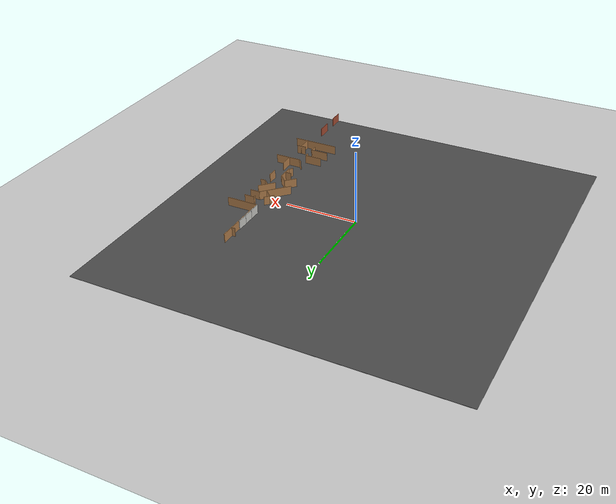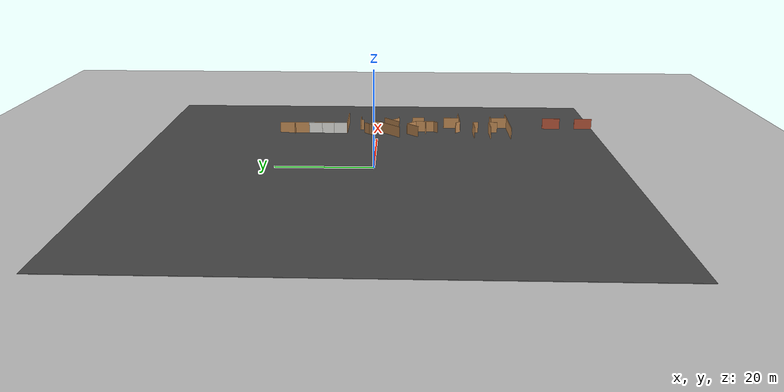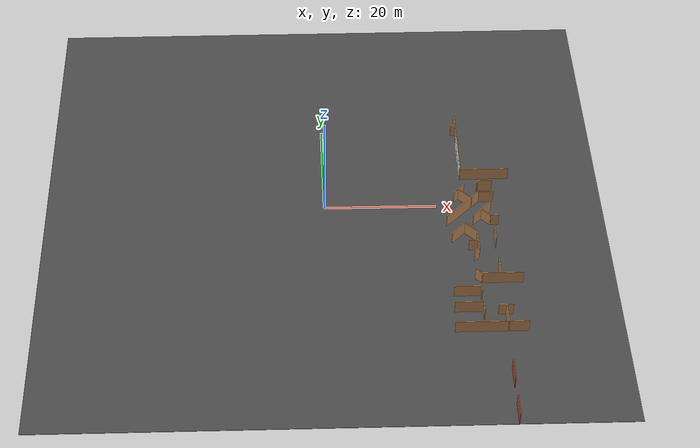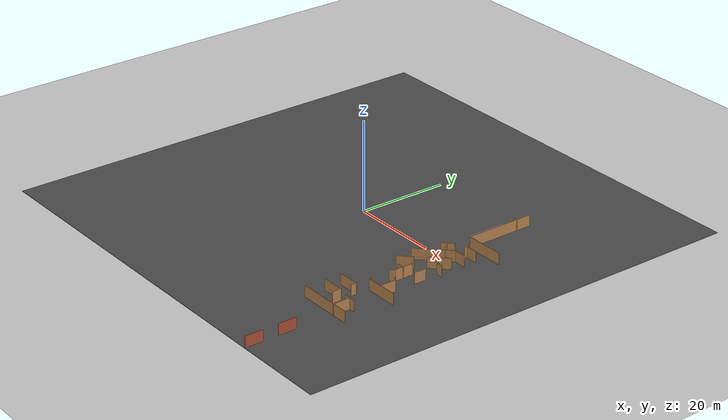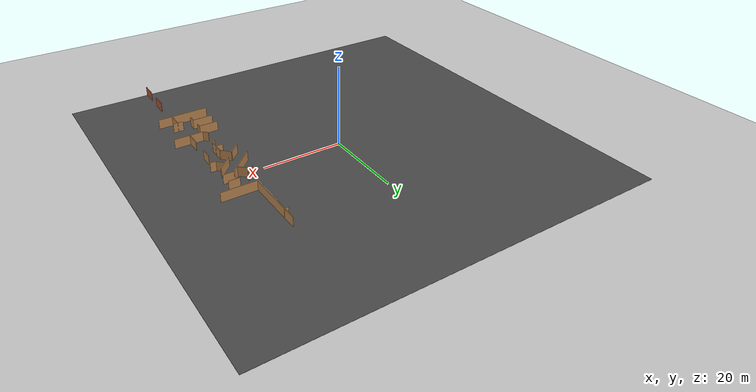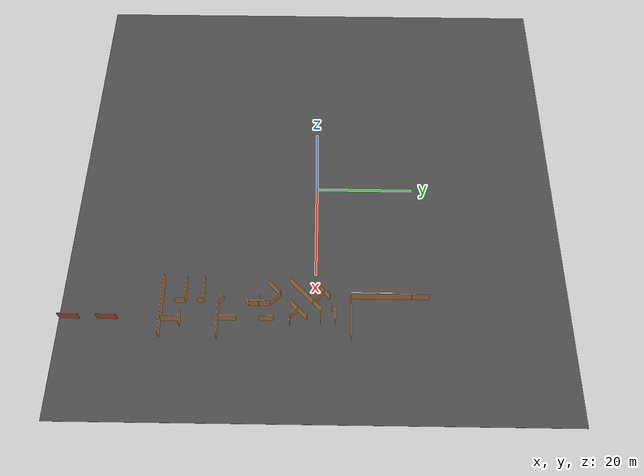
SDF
<sdf version="1.6">
 <world name="default">
  <model name="ground_plane">
   <static>1</static>
   <link name="link">
    <collision name="collision">
     <geometry><plane><normal>0 0 1</normal><size>100 100</size></plane></geometry>
     <surface><friction><ode><mu>100</mu><mu2>50</mu2></ode></friction></surface>
    </collision>
    <visual name="visual">
     <cast_shadows>0</cast_shadows>
     <geometry><plane><normal>0 0 1</normal><size>100 100</size></plane></geometry>
     <material>
      <script><uri>file://media/materials/scripts/gazebo.material</uri><name>Gazebo/Grey</name></script>
     </material>
    </visual>
   </link>
  </model>
  <model name="asphalt_plane">
   <static>1</static>
   <link name="link">
    <collision name="collision"><geometry><box><size>100 100 0.1</size></box></geometry></collision>
    <visual name="visual">
     <cast_shadows>0</cast_shadows>
     <geometry><box><size>100 100 0.1</size></box></geometry>
     <material>
      <script>
       <uri>model://asphalt_plane/materials/scripts</uri>
       <uri>model://asphalt_plane/materials/textures</uri>
       <name>vrc/asphalt</name>
      </script>
     </material>
    </visual>
   </link>
  </model>
  <model name="concrete_wall_15">
   <pose>24.8729 8.48253 0 0 -0 0</pose>
   <link name="Wall_0">
    <collision name="Wall_0_Collision">
     <geometry><box><size>3 0.15 2.5</size></box></geometry>
     <pose>0 0 1.25 0 -0 0</pose>
    </collision>
    <visual name="Wall_0_Visual">
     <pose>0 0 1.25 0 -0 0</pose>
     <geometry><box><size>3 0.15 2.5</size></box></geometry>
     <material>
      <script><uri>file://media/materials/scripts/gazebo.material</uri><name>Gazebo/CeilingTiled</name></script>
      <ambient>1 1 1 1</ambient>
     </material>
     <meta><layer>0</layer></meta>
    </visual>
    <pose>0 0 0 0 -0 1.5708</pose>
   </link>
   <static>1</static>
  </model>
  <model name="concrete_wall_19">
   <pose>24.8866 11.194 0 0 -0 0</pose>
   <link name="Wall_0">
    <collision name="Wall_0_Collision">
     <geometry><box><size>3 0.15 2.5</size></box></geometry>
     <pose>0 0 1.25 0 -0 0</pose>
    </collision>
    <visual name="Wall_0_Visual">
     <pose>0 0 1.25 0 -0 0</pose>
     <geometry><box><size>3 0.15 2.5</size></box></geometry>
     <material>
      <script><uri>file://media/materials/scripts/gazebo.material</uri><name>Gazebo/CeilingTiled</name></script>
      <ambient>1 1 1 1</ambient>
     </material>
     <meta><layer>0</layer></meta>
    </visual>
    <pose>0 0 0 0 -0 1.5708</pose>
   </link>
   <static>1</static>
  </model>
  <model name="concrete_wall_20">
   <pose>24.896 14.1844 0 0 -0 0</pose>
   <link name="Wall_0">
    <collision name="Wall_0_Collision">
     <geometry><box><size>3 0.15 2.5</size></box></geometry>
     <pose>0 0 1.25 0 -0 0</pose>
    </collision>
    <visual name="Wall_0_Visual">
     <pose>0 0 1.25 0 -0 0</pose>
     <geometry><box><size>3 0.15 2.5</size></box></geometry>
     <material>
      <script><uri>file://media/materials/scripts/gazebo.material</uri><name>Gazebo/CeilingTiled</name></script>
      <ambient>1 1 1 1</ambient>
     </material>
     <meta><layer>0</layer></meta>
    </visual>
    <pose>0 0 0 0 -0 1.5708</pose>
   </link>
   <static>1</static>
  </model>
  <model name="brick_wall_1">
   <pose>29.9233 -40.4954 0 0 -0 1.57079</pose>
   <link name="Wall_0">
    <collision name="Wall_0_Collision">
     <geometry><box><size>4 0.15 2.5</size></box></geometry>
     <pose>0 0 1.25 0 -0 0</pose>
    </collision>
    <visual name="Wall_0_Visual">
     <pose>0 0 1.25 0 -0 0</pose>
     <geometry><box><size>4 0.15 2.5</size></box></geometry>
     <material>
      <script><uri>file://media/materials/scripts/gazebo.material</uri><name>Gazebo/Bricks</name></script>
      <ambient>1 1 1 1</ambient>
     </material>
     <meta><layer>0</layer></meta>
    </visual>
   </link>
   <static>1</static>
  </model>
  <model name="brick_wall_1_clone">
   <pose>29.9233 -47.9139 0 0 -0 1.57079</pose>
   <link name="Wall_0">
    <collision name="Wall_0_Collision">
     <geometry><box><size>4 0.15 2.5</size></box></geometry>
     <pose>0 0 1.25 0 -0 0</pose>
    </collision>
    <visual name="Wall_0_Visual">
     <pose>0 0 1.25 0 -0 0</pose>
     <geometry><box><size>4 0.15 2.5</size></box></geometry>
     <material>
      <script><uri>file://media/materials/scripts/gazebo.material</uri><name>Gazebo/Bricks</name></script>
      <ambient>1 1 1 1</ambient>
     </material>
     <meta><layer>0</layer></meta>
    </visual>
   </link>
   <static>1</static>
  </model>
  <model name="willowgarage_v1_1">
   <pose>-14.3408 -3.86286 0 0 -0 0</pose>
   <link name="Wall_18">
    <collision name="Wall_18_Collision">
     <geometry><box><size>15.5 0.15 2.5</size></box></geometry>
     <pose>0 0 1.25 0 -0 0</pose>
    </collision>
    <visual name="Wall_18_Visual">
     <pose>0 0 1.25 0 -0 0</pose>
     <geometry><box><size>15.5 0.15 2.5</size></box></geometry>
     <material>
      <script><uri>file://media/materials/scripts/gazebo.material</uri><name>Gazebo/Wood</name></script>
      <ambient>1 1 1 1</ambient>
     </material>
     <meta><layer>0</layer></meta>
    </visual>
    <pose>39.3855 18.4709 0 0 0 -1.5708</pose>
   </link>
   <link name="Wall_338">
    <collision name="Wall_338_Collision">
     <geometry><box><size>8.75 0.15 2.5</size></box></geometry>
     <pose>0 0 1.25 0 -0 0</pose>
    </collision>
    <visual name="Wall_338_Visual">
     <pose>0 0 1.25 0 -0 0</pose>
     <geometry><box><size>8.75 0.15 2.5</size></box></geometry>
     <material>
      <script><uri>file://media/materials/scripts/gazebo.material</uri><name>Gazebo/Wood</name></script>
      <ambient>1 1 1 1</ambient>
     </material>
     <meta><layer>0</layer></meta>
    </visual>
    <pose>43.6855 10.7959 0 0 -0 0</pose>
   </link>
   <link name="Wall_347">
    <collision name="Wall_347_Collision">
     <geometry><box><size>12.5 0.15 2.5</size></box></geometry>
     <pose>0 0 1.25 0 -0 0</pose>
    </collision>
    <visual name="Wall_347_Visual">
     <pose>0 0 1.25 0 -0 0</pose>
     <geometry><box><size>12.5 0.15 2.5</size></box></geometry>
     <material>
      <script><uri>file://media/materials/scripts/gazebo.material</uri><name>Gazebo/Wood</name></script>
      <ambient>1 1 1 1</ambient>
     </material>
     <meta><layer>0</layer></meta>
    </visual>
    <pose>41.7212 -26.2805 0 0 -0 0</pose>
   </link>
   <link name="Wall_351">
    <collision name="Wall_351_Collision">
     <geometry><box><size>4.75 0.15 2.5</size></box></geometry>
     <pose>0 0 1.25 0 -0 0</pose>
    </collision>
    <visual name="Wall_351_Visual">
     <pose>0 0 1.25 0 -0 0</pose>
     <geometry><box><size>4.75 0.15 2.5</size></box></geometry>
     <material>
      <script><uri>file://media/materials/scripts/gazebo.material</uri><name>Gazebo/Wood</name></script>
      <ambient>1 1 1 1</ambient>
     </material>
     <meta><layer>0</layer></meta>
    </visual>
    <pose>42.3838 0.591594 0 0 0 -2.35619</pose>
   </link>
   <link name="Wall_354">
    <collision name="Wall_354_Collision">
     <geometry><box><size>3.5 0.15 2.5</size></box></geometry>
     <pose>0 0 1.25 0 -0 0</pose>
    </collision>
    <visual name="Wall_354_Visual">
     <pose>0 0 1.25 0 -0 0</pose>
     <geometry><box><size>3.5 0.15 2.5</size></box></geometry>
     <material>
      <script><uri>file://media/materials/scripts/gazebo.material</uri><name>Gazebo/Wood</name></script>
      <ambient>1 1 1 1</ambient>
     </material>
     <meta><layer>0</layer></meta>
    </visual>
    <pose>37.8607 -4.19295 0 0 0 -2.35619</pose>
   </link>
   <link name="Wall_358">
    <collision name="Wall_358_Collision">
     <geometry><box><size>7.25 0.15 2.5</size></box></geometry>
     <pose>0 0 1.25 0 -0 0</pose>
    </collision>
    <visual name="Wall_358_Visual">
     <pose>0 0 1.25 0 -0 0</pose>
     <geometry><box><size>7.25 0.15 2.5</size></box></geometry>
     <material>
      <script><uri>file://media/materials/scripts/gazebo.material</uri><name>Gazebo/Wood</name></script>
      <ambient>1 1 1 1</ambient>
     </material>
     <meta><layer>0</layer></meta>
    </visual>
    <pose>44.5601 -15.1321 0 0 -0 3.14159</pose>
   </link>
   <link name="Wall_359">
    <collision name="Wall_359_Collision">
     <geometry><box><size>1.5 0.15 2.5</size></box></geometry>
     <pose>0 0 1.25 0 -0 0</pose>
    </collision>
    <visual name="Wall_359_Visual">
     <pose>0 0 1.25 0 -0 0</pose>
     <geometry><box><size>1.5 0.15 2.5</size></box></geometry>
     <material>
      <script><uri>file://media/materials/scripts/gazebo.material</uri><name>Gazebo/Wood</name></script>
      <ambient>1 1 1 1</ambient>
     </material>
     <meta><layer>0</layer></meta>
    </visual>
    <pose>40.5328 -14.6548 0 0 -0 2.35619</pose>
   </link>
   <link name="Wall_361">
    <collision name="Wall_361_Collision">
     <geometry><box><size>2.25 0.15 2.5</size></box></geometry>
     <pose>0 0 1.25 0 -0 0</pose>
    </collision>
    <visual name="Wall_361_Visual">
     <pose>0 0 1.25 0 -0 0</pose>
     <geometry><box><size>2.25 0.15 2.5</size></box></geometry>
     <material>
      <script><uri>file://media/materials/scripts/gazebo.material</uri><name>Gazebo/Wood</name></script>
      <ambient>1 1 1 1</ambient>
     </material>
     <meta><layer>0</layer></meta>
    </visual>
    <pose>43.0424 -0.333442 0 0 0 -0.785398</pose>
   </link>
   <link name="Wall_362">
    <collision name="Wall_362_Collision">
     <geometry><box><size>1.5 0.15 2.5</size></box></geometry>
     <pose>0 0 1.25 0 -0 0</pose>
    </collision>
    <visual name="Wall_362_Visual">
     <pose>0 0 1.25 0 -0 0</pose>
     <geometry><box><size>1.5 0.15 2.5</size></box></geometry>
     <material>
      <script><uri>file://media/materials/scripts/gazebo.material</uri><name>Gazebo/Wood</name></script>
      <ambient>1 1 1 1</ambient>
     </material>
     <meta><layer>0</layer></meta>
    </visual>
    <pose>44.4599 -1.0759 0 0 -0 0</pose>
   </link>
   <link name="Wall_365">
    <collision name="Wall_365_Collision">
     <geometry><box><size>2.75 0.15 2.5</size></box></geometry>
     <pose>0 0 1.25 0 -0 0</pose>
    </collision>
    <visual name="Wall_365_Visual">
     <pose>0 0 1.25 0 -0 0</pose>
     <geometry><box><size>2.75 0.15 2.5</size></box></geometry>
     <material>
      <script><uri>file://media/materials/scripts/gazebo.material</uri><name>Gazebo/Wood</name></script>
      <ambient>1 1 1 1</ambient>
     </material>
     <meta><layer>0</layer></meta>
    </visual>
    <pose>44.2273 -5.61048 0 0 0 -1.5708</pose>
   </link>
   <link name="Wall_371">
    <collision name="Wall_371_Collision">
     <geometry><box><size>3.5 0.15 2.5</size></box></geometry>
     <pose>0 0 1.25 0 -0 0</pose>
    </collision>
    <visual name="Wall_371_Visual">
     <pose>0 0 1.25 0 -0 0</pose>
     <geometry><box><size>3.5 0.15 2.5</size></box></geometry>
     <material>
      <script><uri>file://media/materials/scripts/gazebo.material</uri><name>Gazebo/Wood</name></script>
      <ambient>1 1 1 1</ambient>
     </material>
     <meta><layer>0</layer></meta>
    </visual>
    <pose>44.2528 -13.3088 0 0 0 -1.5708</pose>
   </link>
   <link name="Wall_373">
    <collision name="Wall_373_Collision">
     <geometry><box><size>3 0.15 2.5</size></box></geometry>
     <pose>0 0 1.25 0 -0 0</pose>
    </collision>
    <visual name="Wall_373_Visual">
     <pose>0 0 1.25 0 -0 0</pose>
     <geometry><box><size>3 0.15 2.5</size></box></geometry>
     <material>
      <script><uri>file://media/materials/scripts/gazebo.material</uri><name>Gazebo/Wood</name></script>
      <ambient>1 1 1 1</ambient>
     </material>
     <meta><layer>0</layer></meta>
    </visual>
    <pose>40.0527 -4.01617 0 0 0 -0.785398</pose>
   </link>
   <link name="Wall_374">
    <collision name="Wall_374_Collision">
     <geometry><box><size>4.25 0.15 2.5</size></box></geometry>
     <pose>0 0 1.25 0 -0 0</pose>
    </collision>
    <visual name="Wall_374_Visual">
     <pose>0 0 1.25 0 -0 0</pose>
     <geometry><box><size>4.25 0.15 2.5</size></box></geometry>
     <material>
      <script><uri>file://media/materials/scripts/gazebo.material</uri><name>Gazebo/Wood</name></script>
      <ambient>1 1 1 1</ambient>
     </material>
     <meta><layer>0</layer></meta>
    </visual>
    <pose>41.0604 -7.0738 0 0 0 -1.5708</pose>
   </link>
   <link name="Wall_375">
    <collision name="Wall_375_Collision">
     <geometry><box><size>1.25 0.15 2.5</size></box></geometry>
     <pose>0 0 1.25 0 -0 0</pose>
    </collision>
    <visual name="Wall_375_Visual">
     <pose>0 0 1.25 0 -0 0</pose>
     <geometry><box><size>1.25 0.15 2.5</size></box></geometry>
     <material>
      <script><uri>file://media/materials/scripts/gazebo.material</uri><name>Gazebo/Wood</name></script>
      <ambient>1 1 1 1</ambient>
     </material>
     <meta><layer>0</layer></meta>
    </visual>
    <pose>40.6715 -9.51271 0 0 0 -2.35619</pose>
   </link>
   <link name="Wall_377">
    <collision name="Wall_377_Collision">
     <geometry><box><size>1.75 0.15 2.5</size></box></geometry>
     <pose>0 0 1.25 0 -0 0</pose>
    </collision>
    <visual name="Wall_377_Visual">
     <pose>0 0 1.25 0 -0 0</pose>
     <geometry><box><size>1.75 0.15 2.5</size></box></geometry>
     <material>
      <script><uri>file://media/materials/scripts/gazebo.material</uri><name>Gazebo/Wood</name></script>
      <ambient>1 1 1 1</ambient>
     </material>
     <meta><layer>0</layer></meta>
    </visual>
    <pose>40.2794 -7.23982 0 0 -0 3.14159</pose>
   </link>
   <link name="Wall_382">
    <collision name="Wall_382_Collision">
     <geometry><box><size>8.75 0.15 2.5</size></box></geometry>
     <pose>0 0 1.25 0 -0 0</pose>
    </collision>
    <visual name="Wall_382_Visual">
     <pose>0 0 1.25 0 -0 0</pose>
     <geometry><box><size>8.75 0.15 2.5</size></box></geometry>
     <material>
      <script><uri>file://media/materials/scripts/gazebo.material</uri><name>Gazebo/Wood</name></script>
      <ambient>1 1 1 1</ambient>
     </material>
     <meta><layer>0</layer></meta>
    </visual>
    <pose>39.1018 1.85636 0 0 -0 0.785398</pose>
   </link>
   <link name="Wall_383">
    <collision name="Wall_383_Collision">
     <geometry><box><size>2.75 0.15 2.5</size></box></geometry>
     <pose>0 0 1.25 0 -0 0</pose>
    </collision>
    <visual name="Wall_383_Visual">
     <pose>0 0 1.25 0 -0 0</pose>
     <geometry><box><size>2.75 0.15 2.5</size></box></geometry>
     <material>
      <script><uri>file://media/materials/scripts/gazebo.material</uri><name>Gazebo/Wood</name></script>
      <ambient>1 1 1 1</ambient>
     </material>
     <meta><layer>0</layer></meta>
    </visual>
    <pose>43.4424 4.89692 0 0 -0 0</pose>
   </link>
   <link name="Wall_385">
    <collision name="Wall_385_Collision">
     <geometry><box><size>2.75 0.15 2.5</size></box></geometry>
     <pose>0 0 1.25 0 -0 0</pose>
    </collision>
    <visual name="Wall_385_Visual">
     <pose>0 0 1.25 0 -0 0</pose>
     <geometry><box><size>2.75 0.15 2.5</size></box></geometry>
     <material>
      <script><uri>file://media/materials/scripts/gazebo.material</uri><name>Gazebo/Wood</name></script>
      <ambient>1 1 1 1</ambient>
     </material>
     <meta><layer>0</layer></meta>
    </visual>
    <pose>43.4424 7.74692 0 0 -0 3.14159</pose>
   </link>
   <link name="Wall_386">
    <collision name="Wall_386_Collision">
     <geometry><box><size>0.75 0.15 2.5</size></box></geometry>
     <pose>0 0 1.25 0 -0 0</pose>
    </collision>
    <visual name="Wall_386_Visual">
     <pose>0 0 1.25 0 -0 0</pose>
     <geometry><box><size>0.75 0.15 2.5</size></box></geometry>
     <material>
      <script><uri>file://media/materials/scripts/gazebo.material</uri><name>Gazebo/Wood</name></script>
      <ambient>1 1 1 1</ambient>
     </material>
     <meta><layer>0</layer></meta>
    </visual>
    <pose>42.1424 7.44692 0 0 0 -1.5708</pose>
   </link>
   <link name="Wall_407">
    <collision name="Wall_407_Collision">
     <geometry><box><size>5 0.15 2.5</size></box></geometry>
     <pose>0 0 1.25 0 -0 0</pose>
    </collision>
    <visual name="Wall_407_Visual">
     <pose>0 0 1.25 0 -0 0</pose>
     <geometry><box><size>5 0.15 2.5</size></box></geometry>
     <material>
      <script><uri>file://media/materials/scripts/gazebo.material</uri><name>Gazebo/Wood</name></script>
      <ambient>1 1 1 1</ambient>
     </material>
     <meta><layer>0</layer></meta>
    </visual>
    <pose>38.2728 -21.7671 0 0 -0 0</pose>
   </link>
   <link name="Wall_408">
    <collision name="Wall_408_Collision">
     <geometry><box><size>2 0.15 2.5</size></box></geometry>
     <pose>0 0 1.25 0 -0 0</pose>
    </collision>
    <visual name="Wall_408_Visual">
     <pose>0 0 1.25 0 -0 0</pose>
     <geometry><box><size>2 0.15 2.5</size></box></geometry>
     <material>
      <script><uri>file://media/materials/scripts/gazebo.material</uri><name>Gazebo/Wood</name></script>
      <ambient>1 1 1 1</ambient>
     </material>
     <meta><layer>0</layer></meta>
    </visual>
    <pose>40.6978 -22.6921 0 0 0 -1.5708</pose>
   </link>
   <link name="Wall_414">
    <collision name="Wall_414_Collision">
     <geometry><box><size>4 0.15 2.5</size></box></geometry>
     <pose>0 0 1.25 0 -0 0</pose>
    </collision>
    <visual name="Wall_414_Visual">
     <pose>0 0 1.25 0 -0 0</pose>
     <geometry><box><size>4 0.15 2.5</size></box></geometry>
     <material>
      <script><uri>file://media/materials/scripts/gazebo.material</uri><name>Gazebo/Wood</name></script>
      <ambient>1 1 1 1</ambient>
     </material>
     <meta><layer>0</layer></meta>
    </visual>
    <pose>44.4731 -24.4235 0 0 -0 1.5708</pose>
   </link>
   <link name="Wall_416">
    <collision name="Wall_416_Collision">
     <geometry><box><size>2.5 0.15 2.5</size></box></geometry>
     <pose>0 0 1.25 0 -0 0</pose>
    </collision>
    <visual name="Wall_416_Visual">
     <pose>0 0 1.25 0 -0 0</pose>
     <geometry><box><size>2.5 0.15 2.5</size></box></geometry>
     <material>
      <script><uri>file://media/materials/scripts/gazebo.material</uri><name>Gazebo/Wood</name></script>
      <ambient>1 1 1 1</ambient>
     </material>
     <meta><layer>0</layer></meta>
    </visual>
    <pose>44.3981 -22.4985 0 0 -0 3.14159</pose>
   </link>
   <link name="Wall_418">
    <collision name="Wall_418_Collision">
     <geometry><box><size>4.75 0.15 2.5</size></box></geometry>
     <pose>0 0 1.25 0 -0 0</pose>
    </collision>
    <visual name="Wall_418_Visual">
     <pose>0 0 1.25 0 -0 0</pose>
     <geometry><box><size>4.75 0.15 2.5</size></box></geometry>
     <material>
      <script><uri>file://media/materials/scripts/gazebo.material</uri><name>Gazebo/Wood</name></script>
      <ambient>1 1 1 1</ambient>
     </material>
     <meta><layer>0</layer></meta>
    </visual>
    <pose>38.3106 -18.1301 0 0 -0 0</pose>
   </link>
   <link name="Wall_419">
    <collision name="Wall_419_Collision">
     <geometry><box><size>1.25 0.15 2.5</size></box></geometry>
     <pose>0 0 1.25 0 -0 0</pose>
    </collision>
    <visual name="Wall_419_Visual">
     <pose>0 0 1.25 0 -0 0</pose>
     <geometry><box><size>1.25 0.15 2.5</size></box></geometry>
     <material>
      <script><uri>file://media/materials/scripts/gazebo.material</uri><name>Gazebo/Wood</name></script>
      <ambient>1 1 1 1</ambient>
     </material>
     <meta><layer>0</layer></meta>
    </visual>
    <pose>40.6106 -18.6801 0 0 0 -1.5708</pose>
   </link>
   <link name="Wall_431">
    <collision name="Wall_431_Collision">
     <geometry><box><size>3.25 0.15 2.5</size></box></geometry>
     <pose>0 0 1.25 0 -0 0</pose>
    </collision>
    <visual name="Wall_431_Visual">
     <pose>0 0 1.25 0 -0 0</pose>
     <geometry><box><size>3.25 0.15 2.5</size></box></geometry>
     <material>
      <script><uri>file://media/materials/scripts/gazebo.material</uri><name>Gazebo/Wood</name></script>
      <ambient>1 1 1 1</ambient>
     </material>
     <meta><layer>0</layer></meta>
    </visual>
    <pose>39.6341 4.52915 0 0 -0 2.35619</pose>
   </link>
   <link name="Wall_432">
    <collision name="Wall_432_Collision">
     <geometry><box><size>1.25 0.15 2.5</size></box></geometry>
     <pose>0 0 1.25 0 -0 0</pose>
    </collision>
    <visual name="Wall_432_Visual">
     <pose>0 0 1.25 0 -0 0</pose>
     <geometry><box><size>1.25 0.15 2.5</size></box></geometry>
     <material>
      <script><uri>file://media/materials/scripts/gazebo.material</uri><name>Gazebo/Wood</name></script>
      <ambient>1 1 1 1</ambient>
     </material>
     <meta><layer>0</layer></meta>
    </visual>
    <pose>38.1491 5.23626 0 0 0 -2.35619</pose>
   </link>
   <link name="Wall_433">
    <collision name="Wall_433_Collision">
     <geometry><box><size>2.75 0.15 2.5</size></box></geometry>
     <pose>0 0 1.25 0 -0 0</pose>
    </collision>
    <visual name="Wall_433_Visual">
     <pose>0 0 1.25 0 -0 0</pose>
     <geometry><box><size>2.75 0.15 2.5</size></box></geometry>
     <material>
      <script><uri>file://media/materials/scripts/gazebo.material</uri><name>Gazebo/Wood</name></script>
      <ambient>1 1 1 1</ambient>
     </material>
     <meta><layer>0</layer></meta>
    </visual>
    <pose>38.6795 5.76659 0 0 -0 0.785398</pose>
   </link>
   <link name="Wall_98">
    <collision name="Wall_98_Collision">
     <geometry><box><size>1 0.15 2.5</size></box></geometry>
     <pose>0 0 1.25 0 -0 0</pose>
    </collision>
    <visual name="Wall_98_Visual">
     <pose>0 0 1.25 0 -0 0</pose>
     <geometry><box><size>1 0.15 2.5</size></box></geometry>
     <material>
      <script><uri>file://media/materials/scripts/gazebo.material</uri><name>Gazebo/Wood</name></script>
      <ambient>1 1 1 1</ambient>
     </material>
     <meta><layer>0</layer></meta>
    </visual>
    <pose>38.9858 22.7844 0 0 -0 3.14159</pose>
   </link>
   <static>1</static>
  </model>
 </world>
</sdf>
